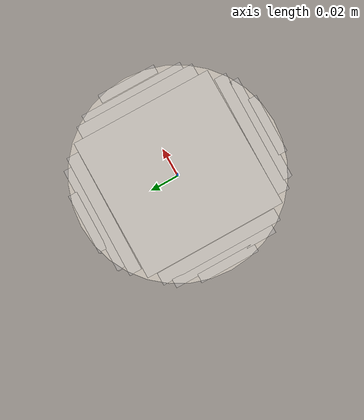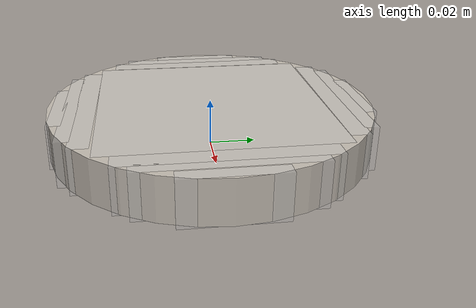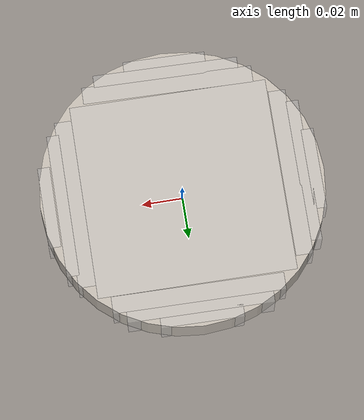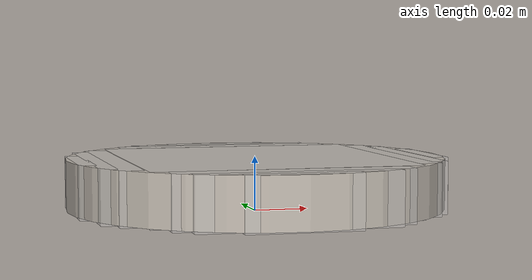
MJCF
<mujoco model="stove_knob_base">
    <asset>
        <texture file="steel-scratched.png" name="tex-stove_knob_base" type="2d" />
        <material name="stove_knob_base" reflectance="0.5" texrepeat="1 1"
            texture="tex-stove_knob_base" texuniform="false" />
        <mesh file="visual/stove_knob_base_vis.msh" name="stove_knob_base_vis" scale="1.0 1.0 1.0" />
    </asset>
    <worldbody>
        <body>
            <body name="object">
                <geom solimp="0.998 0.998 0.001" solref="0.001 1" density="100"
                    friction="0.95 0.3 0.1" type="mesh" mesh="stove_knob_base_vis" conaffinity="0"
                    contype="0" group="1" material="stove_knob_base" />
                <geom solimp="0.998 0.998 0.001" solref="0.001 1" density="100"
                    friction="0.95 0.3 0.1" type="box" pos="-0.00000 -0.00000 0.01033"
                    quat="0.50000 0.50000 -0.50000 0.50000" size="0.00950 0.04821 0.04821" group="0"
                    rgba="0.8 0.8 0.8 0.3" />
                <geom solimp="0.998 0.998 0.001" solref="0.001 1" density="100"
                    friction="0.95 0.3 0.1" type="box" pos="0.05239 -0.00000 0.01033"
                    quat="0.70711 0.70711 0.00000 -0.00000" size="0.00420 0.00950 0.04172" group="0"
                    rgba="0.8 0.8 0.8 0.3" />
                <geom solimp="0.998 0.998 0.001" solref="0.001 1" density="100"
                    friction="0.95 0.3 0.1" type="box" pos="0.05239 -0.00000 0.01033"
                    quat="0.70711 0.70711 0.00000 -0.00000" size="0.00420 0.00950 0.04172" group="0"
                    rgba="0.8 0.8 0.8 0.3" />
                <geom solimp="0.998 0.998 0.001" solref="0.001 1" density="100"
                    friction="0.95 0.3 0.1" type="box" pos="0.05830 -0.00000 0.01033"
                    quat="0.70711 0.70711 0.00000 -0.00000" size="0.00299 0.00950 0.03544" group="0"
                    rgba="0.8 0.8 0.8 0.3" />
                <geom solimp="0.998 0.998 0.001" solref="0.001 1" density="100"
                    friction="0.95 0.3 0.1" type="box" pos="0.06486 -0.00000 0.01033"
                    quat="0.70711 0.70711 0.00000 -0.00000" size="0.00299 0.00950 0.02010" group="0"
                    rgba="0.8 0.8 0.8 0.3" />
                <geom solimp="0.998 0.998 0.001" solref="0.001 1" density="100"
                    friction="0.95 0.3 0.1" type="box" pos="-0.06423 -0.00000 0.01033"
                    quat="0.70711 0.70711 0.00000 -0.00000" size="0.00299 0.00950 0.02010" group="0"
                    rgba="0.8 0.8 0.8 0.3" />
                <geom solimp="0.998 0.998 0.001" solref="0.001 1" density="100"
                    friction="0.95 0.3 0.1" type="box" pos="-0.05936 -0.00000 0.01033"
                    quat="0.70711 0.70711 0.00000 -0.00000" size="0.00299 0.00950 0.03544" group="0"
                    rgba="0.8 0.8 0.8 0.3" />
                <geom solimp="0.998 0.998 0.001" solref="0.001 1" density="100"
                    friction="0.95 0.3 0.1" type="box" pos="-0.05277 -0.00000 0.01033"
                    quat="0.70711 0.70711 0.00000 -0.00000" size="0.00420 0.00950 0.04172" group="0"
                    rgba="0.8 0.8 0.8 0.3" />
                <geom solimp="0.998 0.998 0.001" solref="0.001 1" density="100"
                    friction="0.95 0.3 0.1" type="box" pos="0.00033 0.05277 0.01033"
                    quat="0.49842 0.49842 -0.50158 -0.50158" size="0.00420 0.00950 0.04172"
                    group="0" rgba="0.8 0.8 0.8 0.3" />
                <geom solimp="0.998 0.998 0.001" solref="0.001 1" density="100"
                    friction="0.95 0.3 0.1" type="box" pos="0.00038 0.05936 0.01033"
                    quat="0.49841 -0.49841 0.50158 -0.50158" size="0.00299 0.00950 0.03544"
                    group="0" rgba="0.8 0.8 0.8 0.3" />
                <geom solimp="0.998 0.998 0.001" solref="0.001 1" density="100"
                    friction="0.95 0.3 0.1" type="box" pos="0.00041 0.06423 0.01033"
                    quat="0.49841 0.49841 -0.50158 -0.50158" size="0.00299 0.00950 0.02010"
                    group="0" rgba="0.8 0.8 0.8 0.3" />
                <geom solimp="0.998 0.998 0.001" solref="0.001 1" density="100"
                    friction="0.95 0.3 0.1" type="box" pos="-0.00085 -0.06422 0.01033"
                    quat="0.49667 0.49667 -0.50330 -0.50330" size="0.00299 0.00950 0.02010"
                    group="0" rgba="0.8 0.8 0.8 0.3" />
                <geom solimp="0.998 0.998 0.001" solref="0.001 1" density="100"
                    friction="0.95 0.3 0.1" type="box" pos="-0.00079 -0.05936 0.01033"
                    quat="0.50330 0.50330 0.49668 0.49668" size="0.00299 0.00950 0.03544" group="0"
                    rgba="0.8 0.8 0.8 0.3" />
                <geom solimp="0.998 0.998 0.001" solref="0.001 1" density="100"
                    friction="0.95 0.3 0.1" type="box" pos="-0.00070 -0.05277 0.01033"
                    quat="0.50330 0.50330 0.49668 0.49668" size="0.00420 0.00950 0.04172" group="0"
                    rgba="0.8 0.8 0.8 0.3" />
            </body>
            <site rgba="0 0 0 0" size="0.005" pos="0 0 -0.06" name="bottom_site" />
            <site rgba="0 0 0 0" size="0.005" pos="0 0 0.04" name="top_site" />
            <site rgba="0 0 0 0" size="0.005" pos="0.025 0.025 0" name="horizontal_radius_site" />
        </body>
    </worldbody>
</mujoco>
